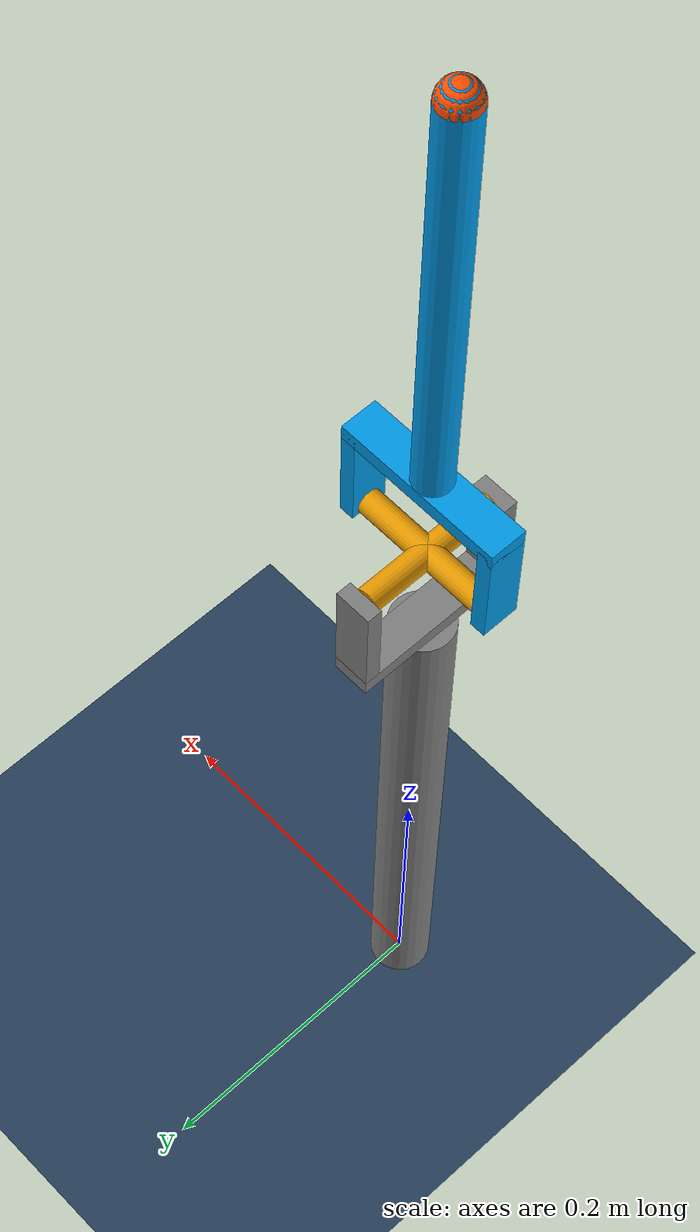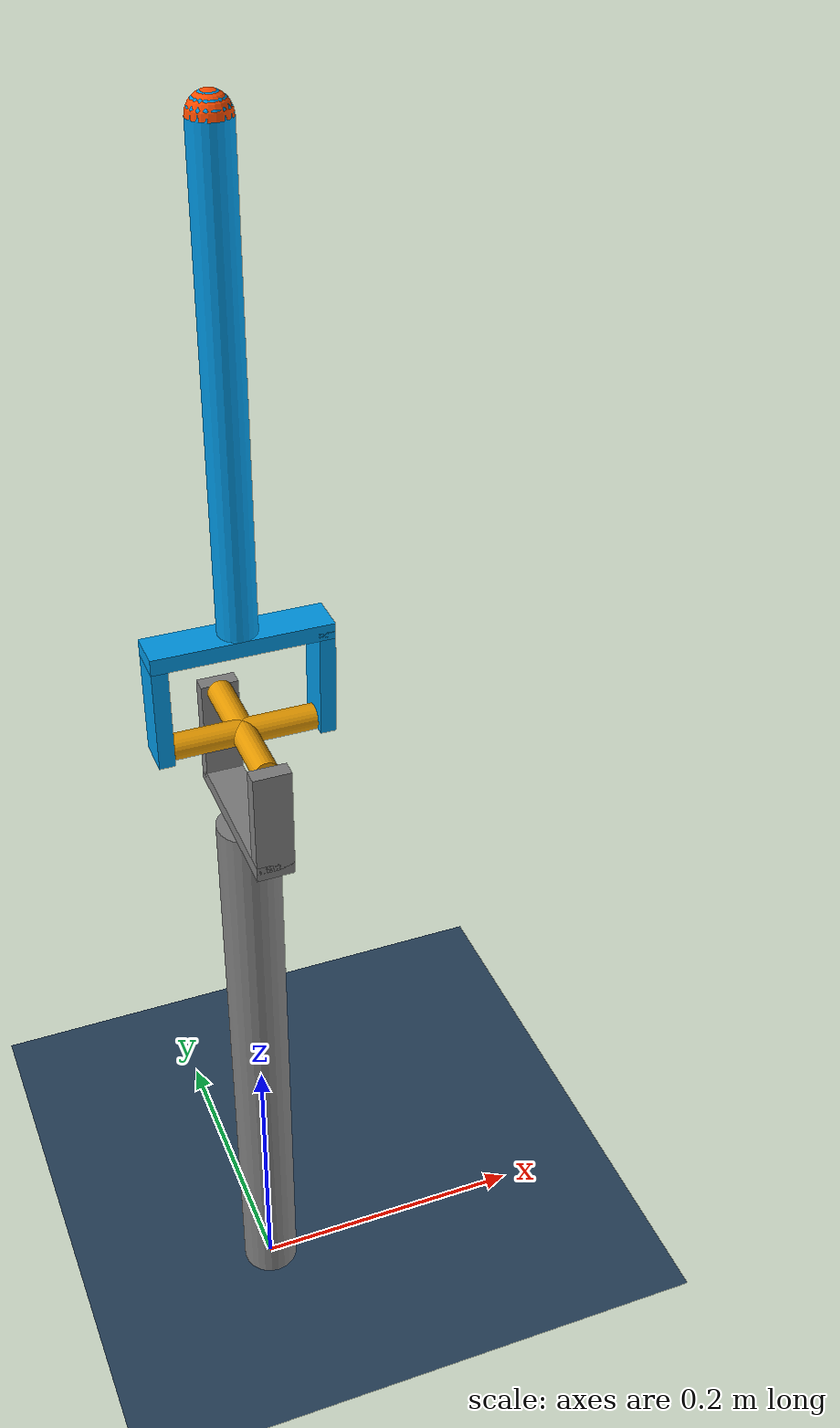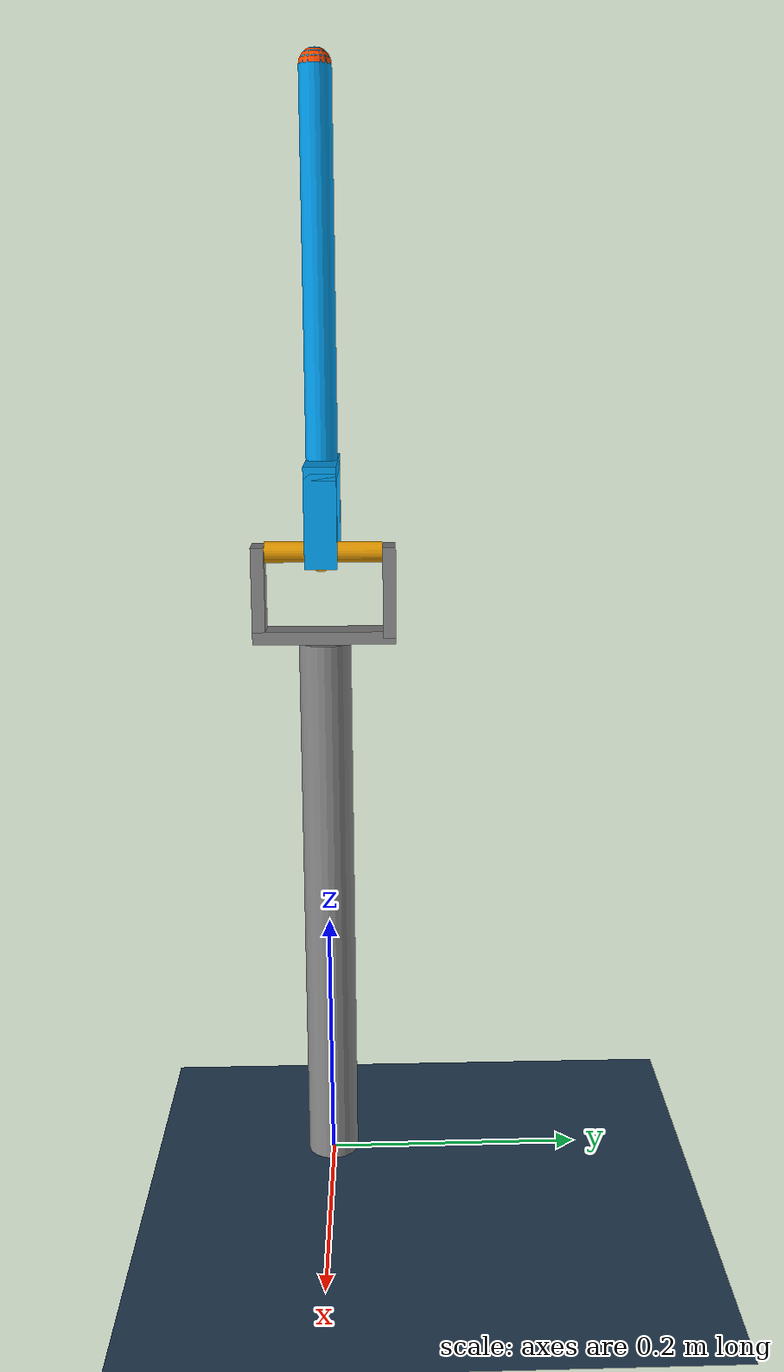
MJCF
<mujoco model="universal_joint_2dof_position">
  <statistic center="0 0 0.1" extent="0.6" meansize=".05"/>

  <visual>
    <headlight diffuse="0.6 0.6 0.6" ambient="0.3 0.3 0.3" specular="0 0 0"/>
    <rgba haze="0.15 0.25 0.35 1"/>
    <global azimuth="-20" elevation="-20" ellipsoidinertia="true"/>
  </visual>

  <asset>
    <texture type="skybox" builtin="gradient" rgb1="0.3 0.5 0.7" rgb2="0 0 0" width="512" height="3072"/>
    <texture type="2d" name="groundplane" builtin="checker" mark="edge" rgb1="0.2 0.3 0.4" rgb2="0.1 0.2 0.3"
      markrgb="0.8 0.8 0.8" width="300" height="300"/>
    <material name="groundplane" texture="groundplane" texuniform="true" texrepeat="5 5" reflectance="0.2"/>
  </asset>

  <option gravity="0 0 -9.81" timestep="0.002"/>

  <default>
    <joint damping="0.01"/>
    <geom contype="0" conaffinity="0"/>
  </default>

  <worldbody>
    <light pos="0 0 1.5" dir="0 0 -1" directional="true"/>
    <geom name="floor" size="0 0 0.05" type="plane" material="groundplane"/>

    <geom name="post" type="cylinder" fromto="0 0 0 0 0 0.43" size="0.02" rgba="0.5 0.5 0.5 1"/>
    <geom name="base_yoke_base" type="box" pos="0 0 0.435" size="0.012 0.055 0.005" rgba="0.5 0.5 0.5 1"/>
    <geom name="base_yoke_arm1" type="box" pos="0 0.05 0.47" size="0.012 0.005 0.035" rgba="0.5 0.5 0.5 1"/>
    <geom name="base_yoke_arm2" type="box" pos="0 -0.05 0.47" size="0.012 0.005 0.035" rgba="0.5 0.5 0.5 1"/>

    <body name="cross" pos="0 0 0.5">
      <joint name="cross_y" type="hinge" axis="0 1 0" range="-60 60" solreflimit="0.004 1"/>
      <geom name="cross_arm_y" type="cylinder" fromto="0 -0.045 0 0 0.045 0" size="0.008" rgba="0.9 0.6 0 1" mass="0.02"/>
      <geom name="cross_arm_x" type="cylinder" fromto="-0.045 0 0 0.045 0 0" size="0.008" rgba="0.9 0.6 0 1" mass="0.02"/>

      <body name="link">
        <joint name="cross_x" type="hinge" axis="1 0 0" range="-60 60" solreflimit="0.004 1"/>
        <geom name="link_yoke_base" type="box" pos="0 0 0.065" size="0.055 0.012 0.005" rgba="0 0.6 0.9 1" mass="0.02"/>
        <geom name="link_yoke_arm1" type="box" pos="0.05 0 0.03" size="0.005 0.012 0.035" rgba="0 0.6 0.9 1" mass="0.02"/>
        <geom name="link_yoke_arm2" type="box" pos="-0.05 0 0.03" size="0.005 0.012 0.035" rgba="0 0.6 0.9 1" mass="0.02"/>
        <geom name="link_rod" type="capsule" fromto="0 0 0.07 0 0 0.35" size="0.012" rgba="0 0.6 0.9 1" mass="0.2"/>
        <site name="tip" pos="0 0 0.35" size="0.012" rgba="1 0.3 0 1"/>
      </body>
    </body>
  </worldbody>

  <sensor>
    <jointpos name="cross_y_pos" joint="cross_y"/>
    <jointpos name="cross_x_pos" joint="cross_x"/>
    <jointvel name="cross_y_vel" joint="cross_y"/>
    <jointvel name="cross_x_vel" joint="cross_x"/>
    <framepos name="tip_pos" objtype="site" objname="tip"/>
  </sensor>

  <actuator>
    <position name="position_servo_y" joint="cross_y" kp="5" kv="0.5" ctrlrange="-1.05 1.05"/>
    <position name="position_servo_x" joint="cross_x" kp="5" kv="0.5" ctrlrange="-1.05 1.05"/>
  </actuator>
</mujoco>
